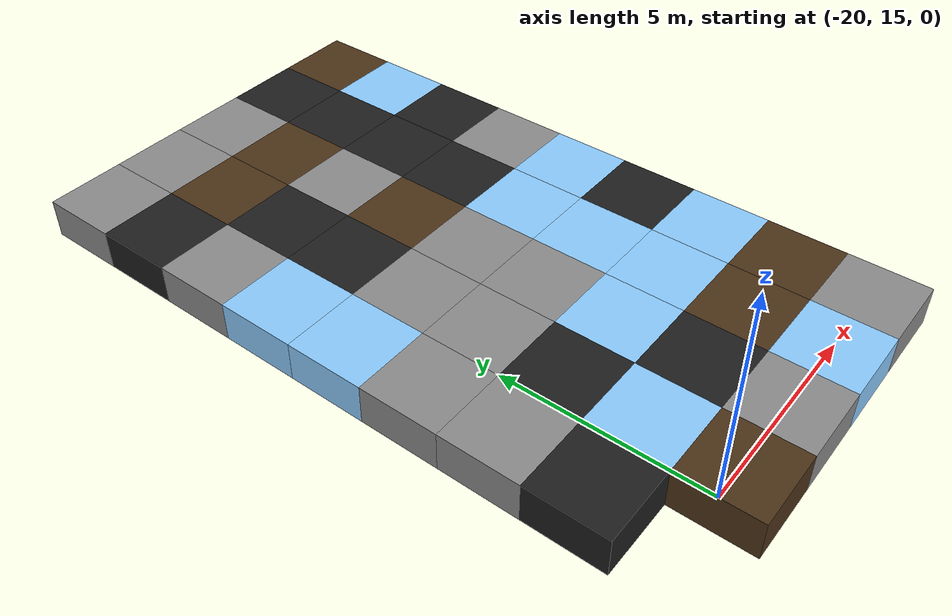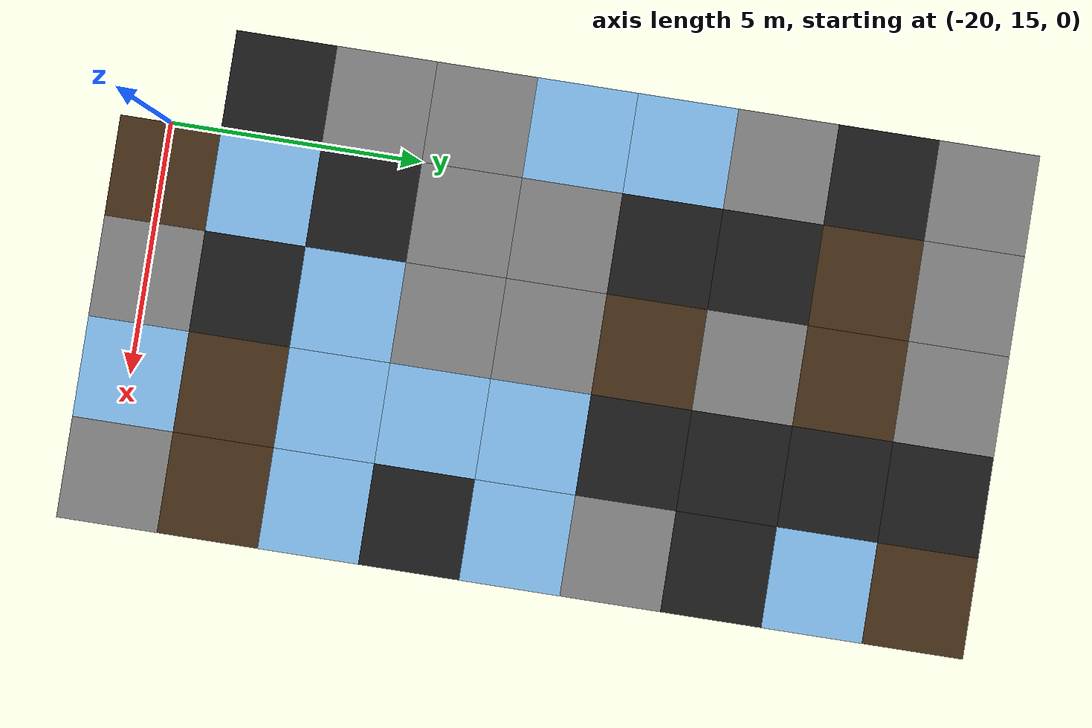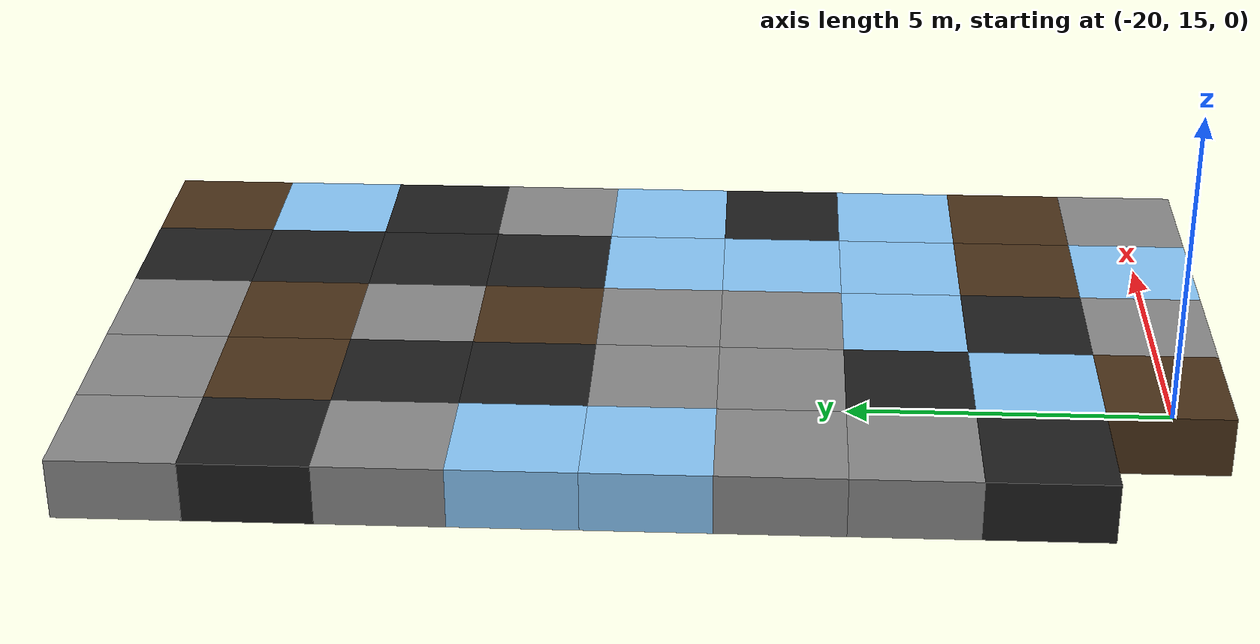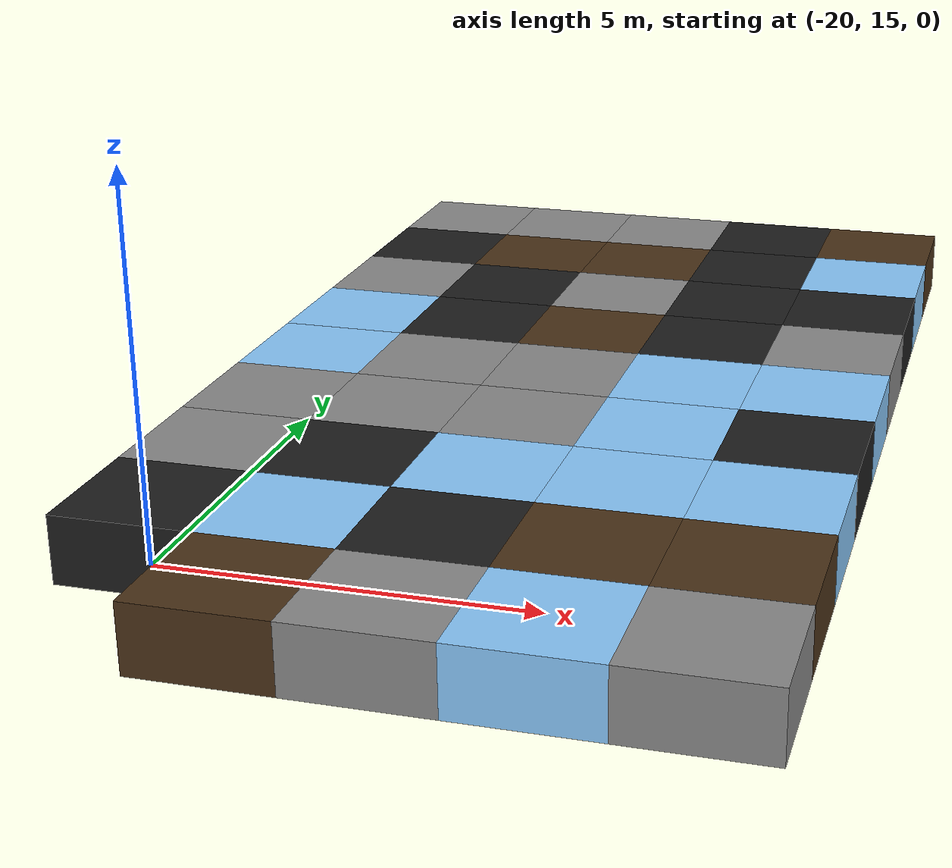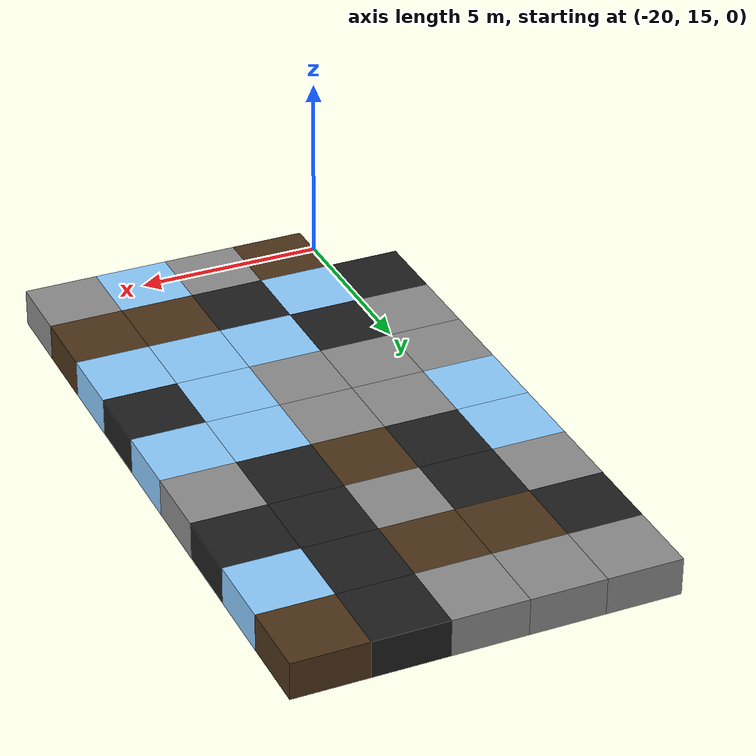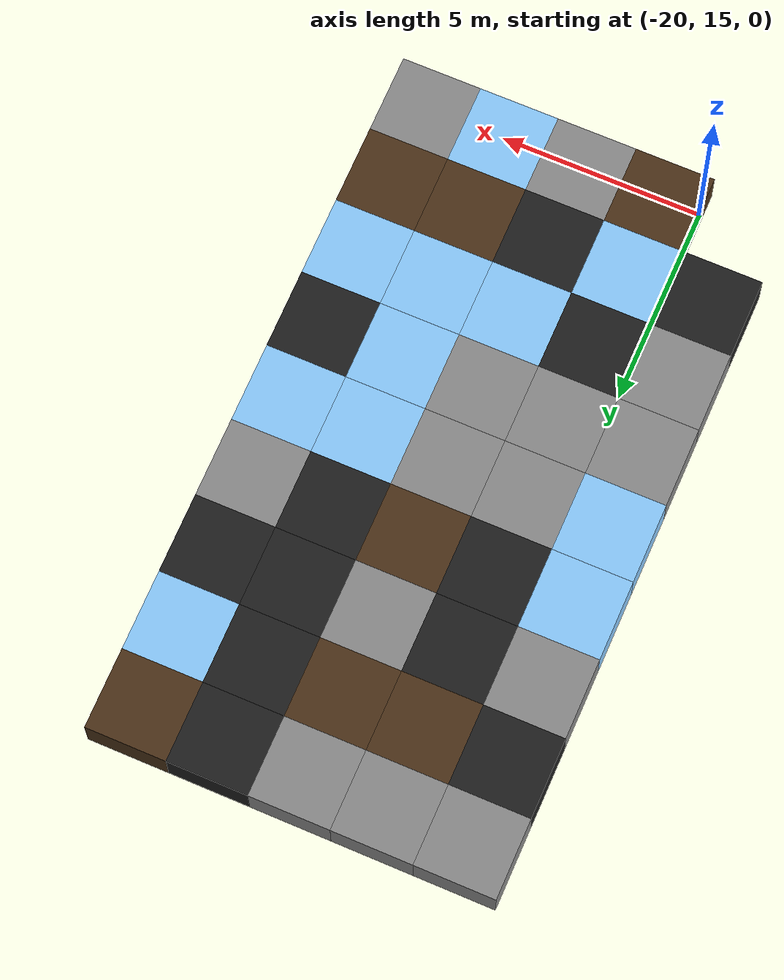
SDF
<sdf version="1.5">
 <world name="squares_example">
  <model name="tile_6_23">
   <static>true</static>
   <pose>-19.000 15.000 -0.500 0 0 0</pose>
   <link name="link">
    <collision name="col">
     <geometry><box><size>2.0 2.0 1.0</size></box></geometry>
     <surface>
      <friction>
       <ode><mu>0.6</mu><mu2>0.4</mu2><fdir1>1 0 0</fdir1><slip1>0.08</slip1><slip2>0.08</slip2></ode>
       <torsional>
        <coefficient>0.03</coefficient>
        <use_patch_radius>false</use_patch_radius>
        <surface_radius>0.12</surface_radius>
        <ode><slip>0.0</slip></ode>
       </torsional>
      </friction>
      <bounce><restitution_coefficient>0.0</restitution_coefficient><threshold>0.1</threshold></bounce>
      <contact>
       <ode><kp>1000000.0</kp><kd>10000.0</kd><max_vel>0.01</max_vel><min_depth>0.0</min_depth></ode>
      </contact>
     </surface>
    </collision>
    <visual name="visual">
     <geometry><box><size>2.0 2.0 1.0</size></box></geometry>
     <material>
      <diffuse>0.30 0.20 0.10 1</diffuse>
      <ambient>0 0 0 0</ambient>
      <specular>0 0 0 1</specular>
      <emissive>0 0 0 1</emissive>
     </material>
    </visual>
   </link>
  </model>
  <model name="tile_7_23">
   <static>true</static>
   <pose>-17.000 15.000 -0.500 0 0 0</pose>
   <link name="link">
    <collision name="col">
     <geometry><box><size>2.0 2.0 1.0</size></box></geometry>
     <surface>
      <friction>
       <ode><mu>0.8</mu><mu2>0.3</mu2><fdir1>1 0 0</fdir1><slip1>0.0</slip1><slip2>0.0</slip2></ode>
       <torsional>
        <coefficient>0.03</coefficient>
        <use_patch_radius>false</use_patch_radius>
        <surface_radius>0.12</surface_radius>
        <ode><slip>0.0</slip></ode>
       </torsional>
      </friction>
      <bounce><restitution_coefficient>0.0</restitution_coefficient><threshold>0.1</threshold></bounce>
      <contact>
       <ode><kp>10000000000.0</kp><kd>10000000.0</kd><max_vel>0.01</max_vel><min_depth>0.0</min_depth></ode>
      </contact>
     </surface>
    </collision>
    <visual name="visual">
     <geometry><box><size>2.0 2.0 1.0</size></box></geometry>
     <material>
      <diffuse>0.55 0.55 0.55 1</diffuse>
      <ambient>0 0 0 0</ambient>
      <specular>0 0 0 1</specular>
      <emissive>0 0 0 1</emissive>
     </material>
    </visual>
   </link>
  </model>
  <model name="tile_8_23">
   <static>true</static>
   <pose>-15.000 15.000 -0.500 0 0 0</pose>
   <link name="link">
    <collision name="col">
     <geometry><box><size>2.0 2.0 1.0</size></box></geometry>
     <surface>
      <friction>
       <ode><mu>0.03</mu><mu2>0.02</mu2><fdir1>1 0 0</fdir1><slip1>0.03</slip1><slip2>0.03</slip2></ode>
       <torsional>
        <coefficient>0.005</coefficient>
        <use_patch_radius>false</use_patch_radius>
        <surface_radius>0.12</surface_radius>
        <ode><slip>0.01</slip></ode>
       </torsional>
      </friction>
      <bounce><restitution_coefficient>0.0</restitution_coefficient><threshold>0.1</threshold></bounce>
      <contact>
       <ode><kp>10000000.0</kp><kd>1000.0</kd><max_vel>0.01</max_vel><min_depth>0.0</min_depth></ode>
      </contact>
     </surface>
    </collision>
    <visual name="visual">
     <geometry><box><size>2.0 2.0 1.0</size></box></geometry>
     <material>
      <diffuse>0.55 0.80 1.00 1</diffuse>
      <ambient>0 0 0 0</ambient>
      <specular>0 0 0 1</specular>
      <emissive>0 0 0 1</emissive>
     </material>
    </visual>
   </link>
  </model>
  <model name="tile_9_23">
   <static>true</static>
   <pose>-13.000 15.000 -0.500 0 0 0</pose>
   <link name="link">
    <collision name="col">
     <geometry><box><size>2.0 2.0 1.0</size></box></geometry>
     <surface>
      <friction>
       <ode><mu>0.8</mu><mu2>0.3</mu2><fdir1>1 0 0</fdir1><slip1>0.0</slip1><slip2>0.0</slip2></ode>
       <torsional>
        <coefficient>0.03</coefficient>
        <use_patch_radius>false</use_patch_radius>
        <surface_radius>0.12</surface_radius>
        <ode><slip>0.0</slip></ode>
       </torsional>
      </friction>
      <bounce><restitution_coefficient>0.0</restitution_coefficient><threshold>0.1</threshold></bounce>
      <contact>
       <ode><kp>10000000000.0</kp><kd>10000000.0</kd><max_vel>0.01</max_vel><min_depth>0.0</min_depth></ode>
      </contact>
     </surface>
    </collision>
    <visual name="visual">
     <geometry><box><size>2.0 2.0 1.0</size></box></geometry>
     <material>
      <diffuse>0.55 0.55 0.55 1</diffuse>
      <ambient>0 0 0 0</ambient>
      <specular>0 0 0 1</specular>
      <emissive>0 0 0 1</emissive>
     </material>
    </visual>
   </link>
  </model>
  <model name="tile_5_24">
   <static>true</static>
   <pose>-21.000 17.000 -0.500 0 0 0</pose>
   <link name="link">
    <collision name="col">
     <geometry><box><size>2.0 2.0 1.0</size></box></geometry>
     <surface>
      <friction>
       <ode><mu>0.4</mu><mu2>0.15</mu2><fdir1>1 0 0</fdir1><slip1>0.0</slip1><slip2>0.0</slip2></ode>
       <torsional>
        <coefficient>0.03</coefficient>
        <use_patch_radius>false</use_patch_radius>
        <surface_radius>0.12</surface_radius>
        <ode><slip>0.0</slip></ode>
       </torsional>
      </friction>
      <bounce><restitution_coefficient>0.0</restitution_coefficient><threshold>0.1</threshold></bounce>
      <contact>
       <ode><kp>1000000000.0</kp><kd>1000000.0</kd><max_vel>0.01</max_vel><min_depth>0.0</min_depth></ode>
      </contact>
     </surface>
    </collision>
    <visual name="visual">
     <geometry><box><size>2.0 2.0 1.0</size></box></geometry>
     <material>
      <diffuse>0.12 0.12 0.12 1</diffuse>
      <ambient>0 0 0 0</ambient>
      <specular>0 0 0 1</specular>
      <emissive>0 0 0 1</emissive>
     </material>
    </visual>
   </link>
  </model>
  <model name="tile_6_24">
   <static>true</static>
   <pose>-19.000 17.000 -0.500 0 0 0</pose>
   <link name="link">
    <collision name="col">
     <geometry><box><size>2.0 2.0 1.0</size></box></geometry>
     <surface>
      <friction>
       <ode><mu>0.03</mu><mu2>0.02</mu2><fdir1>1 0 0</fdir1><slip1>0.03</slip1><slip2>0.03</slip2></ode>
       <torsional>
        <coefficient>0.005</coefficient>
        <use_patch_radius>false</use_patch_radius>
        <surface_radius>0.12</surface_radius>
        <ode><slip>0.01</slip></ode>
       </torsional>
      </friction>
      <bounce><restitution_coefficient>0.0</restitution_coefficient><threshold>0.1</threshold></bounce>
      <contact>
       <ode><kp>10000000.0</kp><kd>1000.0</kd><max_vel>0.01</max_vel><min_depth>0.0</min_depth></ode>
      </contact>
     </surface>
    </collision>
    <visual name="visual">
     <geometry><box><size>2.0 2.0 1.0</size></box></geometry>
     <material>
      <diffuse>0.55 0.80 1.00 1</diffuse>
      <ambient>0 0 0 0</ambient>
      <specular>0 0 0 1</specular>
      <emissive>0 0 0 1</emissive>
     </material>
    </visual>
   </link>
  </model>
  <model name="tile_7_24">
   <static>true</static>
   <pose>-17.000 17.000 -0.500 0 0 0</pose>
   <link name="link">
    <collision name="col">
     <geometry><box><size>2.0 2.0 1.0</size></box></geometry>
     <surface>
      <friction>
       <ode><mu>0.4</mu><mu2>0.15</mu2><fdir1>1 0 0</fdir1><slip1>0.0</slip1><slip2>0.0</slip2></ode>
       <torsional>
        <coefficient>0.03</coefficient>
        <use_patch_radius>false</use_patch_radius>
        <surface_radius>0.12</surface_radius>
        <ode><slip>0.0</slip></ode>
       </torsional>
      </friction>
      <bounce><restitution_coefficient>0.0</restitution_coefficient><threshold>0.1</threshold></bounce>
      <contact>
       <ode><kp>1000000000.0</kp><kd>1000000.0</kd><max_vel>0.01</max_vel><min_depth>0.0</min_depth></ode>
      </contact>
     </surface>
    </collision>
    <visual name="visual">
     <geometry><box><size>2.0 2.0 1.0</size></box></geometry>
     <material>
      <diffuse>0.12 0.12 0.12 1</diffuse>
      <ambient>0 0 0 0</ambient>
      <specular>0 0 0 1</specular>
      <emissive>0 0 0 1</emissive>
     </material>
    </visual>
   </link>
  </model>
  <model name="tile_8_24">
   <static>true</static>
   <pose>-15.000 17.000 -0.500 0 0 0</pose>
   <link name="link">
    <collision name="col">
     <geometry><box><size>2.0 2.0 1.0</size></box></geometry>
     <surface>
      <friction>
       <ode><mu>0.6</mu><mu2>0.4</mu2><fdir1>1 0 0</fdir1><slip1>0.08</slip1><slip2>0.08</slip2></ode>
       <torsional>
        <coefficient>0.03</coefficient>
        <use_patch_radius>false</use_patch_radius>
        <surface_radius>0.12</surface_radius>
        <ode><slip>0.0</slip></ode>
       </torsional>
      </friction>
      <bounce><restitution_coefficient>0.0</restitution_coefficient><threshold>0.1</threshold></bounce>
      <contact>
       <ode><kp>1000000.0</kp><kd>10000.0</kd><max_vel>0.01</max_vel><min_depth>0.0</min_depth></ode>
      </contact>
     </surface>
    </collision>
    <visual name="visual">
     <geometry><box><size>2.0 2.0 1.0</size></box></geometry>
     <material>
      <diffuse>0.30 0.20 0.10 1</diffuse>
      <ambient>0 0 0 0</ambient>
      <specular>0 0 0 1</specular>
      <emissive>0 0 0 1</emissive>
     </material>
    </visual>
   </link>
  </model>
  <model name="tile_9_24">
   <static>true</static>
   <pose>-13.000 17.000 -0.500 0 0 0</pose>
   <link name="link">
    <collision name="col">
     <geometry><box><size>2.0 2.0 1.0</size></box></geometry>
     <surface>
      <friction>
       <ode><mu>0.6</mu><mu2>0.4</mu2><fdir1>1 0 0</fdir1><slip1>0.08</slip1><slip2>0.08</slip2></ode>
       <torsional>
        <coefficient>0.03</coefficient>
        <use_patch_radius>false</use_patch_radius>
        <surface_radius>0.12</surface_radius>
        <ode><slip>0.0</slip></ode>
       </torsional>
      </friction>
      <bounce><restitution_coefficient>0.0</restitution_coefficient><threshold>0.1</threshold></bounce>
      <contact>
       <ode><kp>1000000.0</kp><kd>10000.0</kd><max_vel>0.01</max_vel><min_depth>0.0</min_depth></ode>
      </contact>
     </surface>
    </collision>
    <visual name="visual">
     <geometry><box><size>2.0 2.0 1.0</size></box></geometry>
     <material>
      <diffuse>0.30 0.20 0.10 1</diffuse>
      <ambient>0 0 0 0</ambient>
      <specular>0 0 0 1</specular>
      <emissive>0 0 0 1</emissive>
     </material>
    </visual>
   </link>
  </model>
  <model name="tile_5_25">
   <static>true</static>
   <pose>-21.000 19.000 -0.500 0 0 0</pose>
   <link name="link">
    <collision name="col">
     <geometry><box><size>2.0 2.0 1.0</size></box></geometry>
     <surface>
      <friction>
       <ode><mu>0.8</mu><mu2>0.3</mu2><fdir1>1 0 0</fdir1><slip1>0.0</slip1><slip2>0.0</slip2></ode>
       <torsional>
        <coefficient>0.03</coefficient>
        <use_patch_radius>false</use_patch_radius>
        <surface_radius>0.12</surface_radius>
        <ode><slip>0.0</slip></ode>
       </torsional>
      </friction>
      <bounce><restitution_coefficient>0.0</restitution_coefficient><threshold>0.1</threshold></bounce>
      <contact>
       <ode><kp>10000000000.0</kp><kd>10000000.0</kd><max_vel>0.01</max_vel><min_depth>0.0</min_depth></ode>
      </contact>
     </surface>
    </collision>
    <visual name="visual">
     <geometry><box><size>2.0 2.0 1.0</size></box></geometry>
     <material>
      <diffuse>0.55 0.55 0.55 1</diffuse>
      <ambient>0 0 0 0</ambient>
      <specular>0 0 0 1</specular>
      <emissive>0 0 0 1</emissive>
     </material>
    </visual>
   </link>
  </model>
  <model name="tile_6_25">
   <static>true</static>
   <pose>-19.000 19.000 -0.500 0 0 0</pose>
   <link name="link">
    <collision name="col">
     <geometry><box><size>2.0 2.0 1.0</size></box></geometry>
     <surface>
      <friction>
       <ode><mu>0.4</mu><mu2>0.15</mu2><fdir1>1 0 0</fdir1><slip1>0.0</slip1><slip2>0.0</slip2></ode>
       <torsional>
        <coefficient>0.03</coefficient>
        <use_patch_radius>false</use_patch_radius>
        <surface_radius>0.12</surface_radius>
        <ode><slip>0.0</slip></ode>
       </torsional>
      </friction>
      <bounce><restitution_coefficient>0.0</restitution_coefficient><threshold>0.1</threshold></bounce>
      <contact>
       <ode><kp>1000000000.0</kp><kd>1000000.0</kd><max_vel>0.01</max_vel><min_depth>0.0</min_depth></ode>
      </contact>
     </surface>
    </collision>
    <visual name="visual">
     <geometry><box><size>2.0 2.0 1.0</size></box></geometry>
     <material>
      <diffuse>0.12 0.12 0.12 1</diffuse>
      <ambient>0 0 0 0</ambient>
      <specular>0 0 0 1</specular>
      <emissive>0 0 0 1</emissive>
     </material>
    </visual>
   </link>
  </model>
  <model name="tile_7_25">
   <static>true</static>
   <pose>-17.000 19.000 -0.500 0 0 0</pose>
   <link name="link">
    <collision name="col">
     <geometry><box><size>2.0 2.0 1.0</size></box></geometry>
     <surface>
      <friction>
       <ode><mu>0.03</mu><mu2>0.02</mu2><fdir1>1 0 0</fdir1><slip1>0.03</slip1><slip2>0.03</slip2></ode>
       <torsional>
        <coefficient>0.005</coefficient>
        <use_patch_radius>false</use_patch_radius>
        <surface_radius>0.12</surface_radius>
        <ode><slip>0.01</slip></ode>
       </torsional>
      </friction>
      <bounce><restitution_coefficient>0.0</restitution_coefficient><threshold>0.1</threshold></bounce>
      <contact>
       <ode><kp>10000000.0</kp><kd>1000.0</kd><max_vel>0.01</max_vel><min_depth>0.0</min_depth></ode>
      </contact>
     </surface>
    </collision>
    <visual name="visual">
     <geometry><box><size>2.0 2.0 1.0</size></box></geometry>
     <material>
      <diffuse>0.55 0.80 1.00 1</diffuse>
      <ambient>0 0 0 0</ambient>
      <specular>0 0 0 1</specular>
      <emissive>0 0 0 1</emissive>
     </material>
    </visual>
   </link>
  </model>
  <model name="tile_8_25">
   <static>true</static>
   <pose>-15.000 19.000 -0.500 0 0 0</pose>
   <link name="link">
    <collision name="col">
     <geometry><box><size>2.0 2.0 1.0</size></box></geometry>
     <surface>
      <friction>
       <ode><mu>0.03</mu><mu2>0.02</mu2><fdir1>1 0 0</fdir1><slip1>0.03</slip1><slip2>0.03</slip2></ode>
       <torsional>
        <coefficient>0.005</coefficient>
        <use_patch_radius>false</use_patch_radius>
        <surface_radius>0.12</surface_radius>
        <ode><slip>0.01</slip></ode>
       </torsional>
      </friction>
      <bounce><restitution_coefficient>0.0</restitution_coefficient><threshold>0.1</threshold></bounce>
      <contact>
       <ode><kp>10000000.0</kp><kd>1000.0</kd><max_vel>0.01</max_vel><min_depth>0.0</min_depth></ode>
      </contact>
     </surface>
    </collision>
    <visual name="visual">
     <geometry><box><size>2.0 2.0 1.0</size></box></geometry>
     <material>
      <diffuse>0.55 0.80 1.00 1</diffuse>
      <ambient>0 0 0 0</ambient>
      <specular>0 0 0 1</specular>
      <emissive>0 0 0 1</emissive>
     </material>
    </visual>
   </link>
  </model>
  <model name="tile_9_25">
   <static>true</static>
   <pose>-13.000 19.000 -0.500 0 0 0</pose>
   <link name="link">
    <collision name="col">
     <geometry><box><size>2.0 2.0 1.0</size></box></geometry>
     <surface>
      <friction>
       <ode><mu>0.03</mu><mu2>0.02</mu2><fdir1>1 0 0</fdir1><slip1>0.03</slip1><slip2>0.03</slip2></ode>
       <torsional>
        <coefficient>0.005</coefficient>
        <use_patch_radius>false</use_patch_radius>
        <surface_radius>0.12</surface_radius>
        <ode><slip>0.01</slip></ode>
       </torsional>
      </friction>
      <bounce><restitution_coefficient>0.0</restitution_coefficient><threshold>0.1</threshold></bounce>
      <contact>
       <ode><kp>10000000.0</kp><kd>1000.0</kd><max_vel>0.01</max_vel><min_depth>0.0</min_depth></ode>
      </contact>
     </surface>
    </collision>
    <visual name="visual">
     <geometry><box><size>2.0 2.0 1.0</size></box></geometry>
     <material>
      <diffuse>0.55 0.80 1.00 1</diffuse>
      <ambient>0 0 0 0</ambient>
      <specular>0 0 0 1</specular>
      <emissive>0 0 0 1</emissive>
     </material>
    </visual>
   </link>
  </model>
  <model name="tile_5_26">
   <static>true</static>
   <pose>-21.000 21.000 -0.500 0 0 0</pose>
   <link name="link">
    <collision name="col">
     <geometry><box><size>2.0 2.0 1.0</size></box></geometry>
     <surface>
      <friction>
       <ode><mu>0.8</mu><mu2>0.3</mu2><fdir1>1 0 0</fdir1><slip1>0.0</slip1><slip2>0.0</slip2></ode>
       <torsional>
        <coefficient>0.03</coefficient>
        <use_patch_radius>false</use_patch_radius>
        <surface_radius>0.12</surface_radius>
        <ode><slip>0.0</slip></ode>
       </torsional>
      </friction>
      <bounce><restitution_coefficient>0.0</restitution_coefficient><threshold>0.1</threshold></bounce>
      <contact>
       <ode><kp>10000000000.0</kp><kd>10000000.0</kd><max_vel>0.01</max_vel><min_depth>0.0</min_depth></ode>
      </contact>
     </surface>
    </collision>
    <visual name="visual">
     <geometry><box><size>2.0 2.0 1.0</size></box></geometry>
     <material>
      <diffuse>0.55 0.55 0.55 1</diffuse>
      <ambient>0 0 0 0</ambient>
      <specular>0 0 0 1</specular>
      <emissive>0 0 0 1</emissive>
     </material>
    </visual>
   </link>
  </model>
  <model name="tile_6_26">
   <static>true</static>
   <pose>-19.000 21.000 -0.500 0 0 0</pose>
   <link name="link">
    <collision name="col">
     <geometry><box><size>2.0 2.0 1.0</size></box></geometry>
     <surface>
      <friction>
       <ode><mu>0.8</mu><mu2>0.3</mu2><fdir1>1 0 0</fdir1><slip1>0.0</slip1><slip2>0.0</slip2></ode>
       <torsional>
        <coefficient>0.03</coefficient>
        <use_patch_radius>false</use_patch_radius>
        <surface_radius>0.12</surface_radius>
        <ode><slip>0.0</slip></ode>
       </torsional>
      </friction>
      <bounce><restitution_coefficient>0.0</restitution_coefficient><threshold>0.1</threshold></bounce>
      <contact>
       <ode><kp>10000000000.0</kp><kd>10000000.0</kd><max_vel>0.01</max_vel><min_depth>0.0</min_depth></ode>
      </contact>
     </surface>
    </collision>
    <visual name="visual">
     <geometry><box><size>2.0 2.0 1.0</size></box></geometry>
     <material>
      <diffuse>0.55 0.55 0.55 1</diffuse>
      <ambient>0 0 0 0</ambient>
      <specular>0 0 0 1</specular>
      <emissive>0 0 0 1</emissive>
     </material>
    </visual>
   </link>
  </model>
  <model name="tile_7_26">
   <static>true</static>
   <pose>-17.000 21.000 -0.500 0 0 0</pose>
   <link name="link">
    <collision name="col">
     <geometry><box><size>2.0 2.0 1.0</size></box></geometry>
     <surface>
      <friction>
       <ode><mu>0.8</mu><mu2>0.3</mu2><fdir1>1 0 0</fdir1><slip1>0.0</slip1><slip2>0.0</slip2></ode>
       <torsional>
        <coefficient>0.03</coefficient>
        <use_patch_radius>false</use_patch_radius>
        <surface_radius>0.12</surface_radius>
        <ode><slip>0.0</slip></ode>
       </torsional>
      </friction>
      <bounce><restitution_coefficient>0.0</restitution_coefficient><threshold>0.1</threshold></bounce>
      <contact>
       <ode><kp>10000000000.0</kp><kd>10000000.0</kd><max_vel>0.01</max_vel><min_depth>0.0</min_depth></ode>
      </contact>
     </surface>
    </collision>
    <visual name="visual">
     <geometry><box><size>2.0 2.0 1.0</size></box></geometry>
     <material>
      <diffuse>0.55 0.55 0.55 1</diffuse>
      <ambient>0 0 0 0</ambient>
      <specular>0 0 0 1</specular>
      <emissive>0 0 0 1</emissive>
     </material>
    </visual>
   </link>
  </model>
  <model name="tile_8_26">
   <static>true</static>
   <pose>-15.000 21.000 -0.500 0 0 0</pose>
   <link name="link">
    <collision name="col">
     <geometry><box><size>2.0 2.0 1.0</size></box></geometry>
     <surface>
      <friction>
       <ode><mu>0.03</mu><mu2>0.02</mu2><fdir1>1 0 0</fdir1><slip1>0.03</slip1><slip2>0.03</slip2></ode>
       <torsional>
        <coefficient>0.005</coefficient>
        <use_patch_radius>false</use_patch_radius>
        <surface_radius>0.12</surface_radius>
        <ode><slip>0.01</slip></ode>
       </torsional>
      </friction>
      <bounce><restitution_coefficient>0.0</restitution_coefficient><threshold>0.1</threshold></bounce>
      <contact>
       <ode><kp>10000000.0</kp><kd>1000.0</kd><max_vel>0.01</max_vel><min_depth>0.0</min_depth></ode>
      </contact>
     </surface>
    </collision>
    <visual name="visual">
     <geometry><box><size>2.0 2.0 1.0</size></box></geometry>
     <material>
      <diffuse>0.55 0.80 1.00 1</diffuse>
      <ambient>0 0 0 0</ambient>
      <specular>0 0 0 1</specular>
      <emissive>0 0 0 1</emissive>
     </material>
    </visual>
   </link>
  </model>
  <model name="tile_9_26">
   <static>true</static>
   <pose>-13.000 21.000 -0.500 0 0 0</pose>
   <link name="link">
    <collision name="col">
     <geometry><box><size>2.0 2.0 1.0</size></box></geometry>
     <surface>
      <friction>
       <ode><mu>0.4</mu><mu2>0.15</mu2><fdir1>1 0 0</fdir1><slip1>0.0</slip1><slip2>0.0</slip2></ode>
       <torsional>
        <coefficient>0.03</coefficient>
        <use_patch_radius>false</use_patch_radius>
        <surface_radius>0.12</surface_radius>
        <ode><slip>0.0</slip></ode>
       </torsional>
      </friction>
      <bounce><restitution_coefficient>0.0</restitution_coefficient><threshold>0.1</threshold></bounce>
      <contact>
       <ode><kp>1000000000.0</kp><kd>1000000.0</kd><max_vel>0.01</max_vel><min_depth>0.0</min_depth></ode>
      </contact>
     </surface>
    </collision>
    <visual name="visual">
     <geometry><box><size>2.0 2.0 1.0</size></box></geometry>
     <material>
      <diffuse>0.12 0.12 0.12 1</diffuse>
      <ambient>0 0 0 0</ambient>
      <specular>0 0 0 1</specular>
      <emissive>0 0 0 1</emissive>
     </material>
    </visual>
   </link>
  </model>
  <model name="tile_5_27">
   <static>true</static>
   <pose>-21.000 23.000 -0.500 0 0 0</pose>
   <link name="link">
    <collision name="col">
     <geometry><box><size>2.0 2.0 1.0</size></box></geometry>
     <surface>
      <friction>
       <ode><mu>0.03</mu><mu2>0.02</mu2><fdir1>1 0 0</fdir1><slip1>0.03</slip1><slip2>0.03</slip2></ode>
       <torsional>
        <coefficient>0.005</coefficient>
        <use_patch_radius>false</use_patch_radius>
        <surface_radius>0.12</surface_radius>
        <ode><slip>0.01</slip></ode>
       </torsional>
      </friction>
      <bounce><restitution_coefficient>0.0</restitution_coefficient><threshold>0.1</threshold></bounce>
      <contact>
       <ode><kp>10000000.0</kp><kd>1000.0</kd><max_vel>0.01</max_vel><min_depth>0.0</min_depth></ode>
      </contact>
     </surface>
    </collision>
    <visual name="visual">
     <geometry><box><size>2.0 2.0 1.0</size></box></geometry>
     <material>
      <diffuse>0.55 0.80 1.00 1</diffuse>
      <ambient>0 0 0 0</ambient>
      <specular>0 0 0 1</specular>
      <emissive>0 0 0 1</emissive>
     </material>
    </visual>
   </link>
  </model>
  <model name="tile_6_27">
   <static>true</static>
   <pose>-19.000 23.000 -0.500 0 0 0</pose>
   <link name="link">
    <collision name="col">
     <geometry><box><size>2.0 2.0 1.0</size></box></geometry>
     <surface>
      <friction>
       <ode><mu>0.8</mu><mu2>0.3</mu2><fdir1>1 0 0</fdir1><slip1>0.0</slip1><slip2>0.0</slip2></ode>
       <torsional>
        <coefficient>0.03</coefficient>
        <use_patch_radius>false</use_patch_radius>
        <surface_radius>0.12</surface_radius>
        <ode><slip>0.0</slip></ode>
       </torsional>
      </friction>
      <bounce><restitution_coefficient>0.0</restitution_coefficient><threshold>0.1</threshold></bounce>
      <contact>
       <ode><kp>10000000000.0</kp><kd>10000000.0</kd><max_vel>0.01</max_vel><min_depth>0.0</min_depth></ode>
      </contact>
     </surface>
    </collision>
    <visual name="visual">
     <geometry><box><size>2.0 2.0 1.0</size></box></geometry>
     <material>
      <diffuse>0.55 0.55 0.55 1</diffuse>
      <ambient>0 0 0 0</ambient>
      <specular>0 0 0 1</specular>
      <emissive>0 0 0 1</emissive>
     </material>
    </visual>
   </link>
  </model>
  <model name="tile_7_27">
   <static>true</static>
   <pose>-17.000 23.000 -0.500 0 0 0</pose>
   <link name="link">
    <collision name="col">
     <geometry><box><size>2.0 2.0 1.0</size></box></geometry>
     <surface>
      <friction>
       <ode><mu>0.8</mu><mu2>0.3</mu2><fdir1>1 0 0</fdir1><slip1>0.0</slip1><slip2>0.0</slip2></ode>
       <torsional>
        <coefficient>0.03</coefficient>
        <use_patch_radius>false</use_patch_radius>
        <surface_radius>0.12</surface_radius>
        <ode><slip>0.0</slip></ode>
       </torsional>
      </friction>
      <bounce><restitution_coefficient>0.0</restitution_coefficient><threshold>0.1</threshold></bounce>
      <contact>
       <ode><kp>10000000000.0</kp><kd>10000000.0</kd><max_vel>0.01</max_vel><min_depth>0.0</min_depth></ode>
      </contact>
     </surface>
    </collision>
    <visual name="visual">
     <geometry><box><size>2.0 2.0 1.0</size></box></geometry>
     <material>
      <diffuse>0.55 0.55 0.55 1</diffuse>
      <ambient>0 0 0 0</ambient>
      <specular>0 0 0 1</specular>
      <emissive>0 0 0 1</emissive>
     </material>
    </visual>
   </link>
  </model>
  <model name="tile_8_27">
   <static>true</static>
   <pose>-15.000 23.000 -0.500 0 0 0</pose>
   <link name="link">
    <collision name="col">
     <geometry><box><size>2.0 2.0 1.0</size></box></geometry>
     <surface>
      <friction>
       <ode><mu>0.03</mu><mu2>0.02</mu2><fdir1>1 0 0</fdir1><slip1>0.03</slip1><slip2>0.03</slip2></ode>
       <torsional>
        <coefficient>0.005</coefficient>
        <use_patch_radius>false</use_patch_radius>
        <surface_radius>0.12</surface_radius>
        <ode><slip>0.01</slip></ode>
       </torsional>
      </friction>
      <bounce><restitution_coefficient>0.0</restitution_coefficient><threshold>0.1</threshold></bounce>
      <contact>
       <ode><kp>10000000.0</kp><kd>1000.0</kd><max_vel>0.01</max_vel><min_depth>0.0</min_depth></ode>
      </contact>
     </surface>
    </collision>
    <visual name="visual">
     <geometry><box><size>2.0 2.0 1.0</size></box></geometry>
     <material>
      <diffuse>0.55 0.80 1.00 1</diffuse>
      <ambient>0 0 0 0</ambient>
      <specular>0 0 0 1</specular>
      <emissive>0 0 0 1</emissive>
     </material>
    </visual>
   </link>
  </model>
  <model name="tile_9_27">
   <static>true</static>
   <pose>-13.000 23.000 -0.500 0 0 0</pose>
   <link name="link">
    <collision name="col">
     <geometry><box><size>2.0 2.0 1.0</size></box></geometry>
     <surface>
      <friction>
       <ode><mu>0.03</mu><mu2>0.02</mu2><fdir1>1 0 0</fdir1><slip1>0.03</slip1><slip2>0.03</slip2></ode>
       <torsional>
        <coefficient>0.005</coefficient>
        <use_patch_radius>false</use_patch_radius>
        <surface_radius>0.12</surface_radius>
        <ode><slip>0.01</slip></ode>
       </torsional>
      </friction>
      <bounce><restitution_coefficient>0.0</restitution_coefficient><threshold>0.1</threshold></bounce>
      <contact>
       <ode><kp>10000000.0</kp><kd>1000.0</kd><max_vel>0.01</max_vel><min_depth>0.0</min_depth></ode>
      </contact>
     </surface>
    </collision>
    <visual name="visual">
     <geometry><box><size>2.0 2.0 1.0</size></box></geometry>
     <material>
      <diffuse>0.55 0.80 1.00 1</diffuse>
      <ambient>0 0 0 0</ambient>
      <specular>0 0 0 1</specular>
      <emissive>0 0 0 1</emissive>
     </material>
    </visual>
   </link>
  </model>
  <model name="tile_5_28">
   <static>true</static>
   <pose>-21.000 25.000 -0.500 0 0 0</pose>
   <link name="link">
    <collision name="col">
     <geometry><box><size>2.0 2.0 1.0</size></box></geometry>
     <surface>
      <friction>
       <ode><mu>0.03</mu><mu2>0.02</mu2><fdir1>1 0 0</fdir1><slip1>0.03</slip1><slip2>0.03</slip2></ode>
       <torsional>
        <coefficient>0.005</coefficient>
        <use_patch_radius>false</use_patch_radius>
        <surface_radius>0.12</surface_radius>
        <ode><slip>0.01</slip></ode>
       </torsional>
      </friction>
      <bounce><restitution_coefficient>0.0</restitution_coefficient><threshold>0.1</threshold></bounce>
      <contact>
       <ode><kp>10000000.0</kp><kd>1000.0</kd><max_vel>0.01</max_vel><min_depth>0.0</min_depth></ode>
      </contact>
     </surface>
    </collision>
    <visual name="visual">
     <geometry><box><size>2.0 2.0 1.0</size></box></geometry>
     <material>
      <diffuse>0.55 0.80 1.00 1</diffuse>
      <ambient>0 0 0 0</ambient>
      <specular>0 0 0 1</specular>
      <emissive>0 0 0 1</emissive>
     </material>
    </visual>
   </link>
  </model>
  <model name="tile_6_28">
   <static>true</static>
   <pose>-19.000 25.000 -0.500 0 0 0</pose>
   <link name="link">
    <collision name="col">
     <geometry><box><size>2.0 2.0 1.0</size></box></geometry>
     <surface>
      <friction>
       <ode><mu>0.4</mu><mu2>0.15</mu2><fdir1>1 0 0</fdir1><slip1>0.0</slip1><slip2>0.0</slip2></ode>
       <torsional>
        <coefficient>0.03</coefficient>
        <use_patch_radius>false</use_patch_radius>
        <surface_radius>0.12</surface_radius>
        <ode><slip>0.0</slip></ode>
       </torsional>
      </friction>
      <bounce><restitution_coefficient>0.0</restitution_coefficient><threshold>0.1</threshold></bounce>
      <contact>
       <ode><kp>1000000000.0</kp><kd>1000000.0</kd><max_vel>0.01</max_vel><min_depth>0.0</min_depth></ode>
      </contact>
     </surface>
    </collision>
    <visual name="visual">
     <geometry><box><size>2.0 2.0 1.0</size></box></geometry>
     <material>
      <diffuse>0.12 0.12 0.12 1</diffuse>
      <ambient>0 0 0 0</ambient>
      <specular>0 0 0 1</specular>
      <emissive>0 0 0 1</emissive>
     </material>
    </visual>
   </link>
  </model>
  <model name="tile_7_28">
   <static>true</static>
   <pose>-17.000 25.000 -0.500 0 0 0</pose>
   <link name="link">
    <collision name="col">
     <geometry><box><size>2.0 2.0 1.0</size></box></geometry>
     <surface>
      <friction>
       <ode><mu>0.6</mu><mu2>0.4</mu2><fdir1>1 0 0</fdir1><slip1>0.08</slip1><slip2>0.08</slip2></ode>
       <torsional>
        <coefficient>0.03</coefficient>
        <use_patch_radius>false</use_patch_radius>
        <surface_radius>0.12</surface_radius>
        <ode><slip>0.0</slip></ode>
       </torsional>
      </friction>
      <bounce><restitution_coefficient>0.0</restitution_coefficient><threshold>0.1</threshold></bounce>
      <contact>
       <ode><kp>1000000.0</kp><kd>10000.0</kd><max_vel>0.01</max_vel><min_depth>0.0</min_depth></ode>
      </contact>
     </surface>
    </collision>
    <visual name="visual">
     <geometry><box><size>2.0 2.0 1.0</size></box></geometry>
     <material>
      <diffuse>0.30 0.20 0.10 1</diffuse>
      <ambient>0 0 0 0</ambient>
      <specular>0 0 0 1</specular>
      <emissive>0 0 0 1</emissive>
     </material>
    </visual>
   </link>
  </model>
  <model name="tile_8_28">
   <static>true</static>
   <pose>-15.000 25.000 -0.500 0 0 0</pose>
   <link name="link">
    <collision name="col">
     <geometry><box><size>2.0 2.0 1.0</size></box></geometry>
     <surface>
      <friction>
       <ode><mu>0.4</mu><mu2>0.15</mu2><fdir1>1 0 0</fdir1><slip1>0.0</slip1><slip2>0.0</slip2></ode>
       <torsional>
        <coefficient>0.03</coefficient>
        <use_patch_radius>false</use_patch_radius>
        <surface_radius>0.12</surface_radius>
        <ode><slip>0.0</slip></ode>
       </torsional>
      </friction>
      <bounce><restitution_coefficient>0.0</restitution_coefficient><threshold>0.1</threshold></bounce>
      <contact>
       <ode><kp>1000000000.0</kp><kd>1000000.0</kd><max_vel>0.01</max_vel><min_depth>0.0</min_depth></ode>
      </contact>
     </surface>
    </collision>
    <visual name="visual">
     <geometry><box><size>2.0 2.0 1.0</size></box></geometry>
     <material>
      <diffuse>0.12 0.12 0.12 1</diffuse>
      <ambient>0 0 0 0</ambient>
      <specular>0 0 0 1</specular>
      <emissive>0 0 0 1</emissive>
     </material>
    </visual>
   </link>
  </model>
  <model name="tile_9_28">
   <static>true</static>
   <pose>-13.000 25.000 -0.500 0 0 0</pose>
   <link name="link">
    <collision name="col">
     <geometry><box><size>2.0 2.0 1.0</size></box></geometry>
     <surface>
      <friction>
       <ode><mu>0.8</mu><mu2>0.3</mu2><fdir1>1 0 0</fdir1><slip1>0.0</slip1><slip2>0.0</slip2></ode>
       <torsional>
        <coefficient>0.03</coefficient>
        <use_patch_radius>false</use_patch_radius>
        <surface_radius>0.12</surface_radius>
        <ode><slip>0.0</slip></ode>
       </torsional>
      </friction>
      <bounce><restitution_coefficient>0.0</restitution_coefficient><threshold>0.1</threshold></bounce>
      <contact>
       <ode><kp>10000000000.0</kp><kd>10000000.0</kd><max_vel>0.01</max_vel><min_depth>0.0</min_depth></ode>
      </contact>
     </surface>
    </collision>
    <visual name="visual">
     <geometry><box><size>2.0 2.0 1.0</size></box></geometry>
     <material>
      <diffuse>0.55 0.55 0.55 1</diffuse>
      <ambient>0 0 0 0</ambient>
      <specular>0 0 0 1</specular>
      <emissive>0 0 0 1</emissive>
     </material>
    </visual>
   </link>
  </model>
  <model name="tile_5_29">
   <static>true</static>
   <pose>-21.000 27.000 -0.500 0 0 0</pose>
   <link name="link">
    <collision name="col">
     <geometry><box><size>2.0 2.0 1.0</size></box></geometry>
     <surface>
      <friction>
       <ode><mu>0.8</mu><mu2>0.3</mu2><fdir1>1 0 0</fdir1><slip1>0.0</slip1><slip2>0.0</slip2></ode>
       <torsional>
        <coefficient>0.03</coefficient>
        <use_patch_radius>false</use_patch_radius>
        <surface_radius>0.12</surface_radius>
        <ode><slip>0.0</slip></ode>
       </torsional>
      </friction>
      <bounce><restitution_coefficient>0.0</restitution_coefficient><threshold>0.1</threshold></bounce>
      <contact>
       <ode><kp>10000000000.0</kp><kd>10000000.0</kd><max_vel>0.01</max_vel><min_depth>0.0</min_depth></ode>
      </contact>
     </surface>
    </collision>
    <visual name="visual">
     <geometry><box><size>2.0 2.0 1.0</size></box></geometry>
     <material>
      <diffuse>0.55 0.55 0.55 1</diffuse>
      <ambient>0 0 0 0</ambient>
      <specular>0 0 0 1</specular>
      <emissive>0 0 0 1</emissive>
     </material>
    </visual>
   </link>
  </model>
  <model name="tile_6_29">
   <static>true</static>
   <pose>-19.000 27.000 -0.500 0 0 0</pose>
   <link name="link">
    <collision name="col">
     <geometry><box><size>2.0 2.0 1.0</size></box></geometry>
     <surface>
      <friction>
       <ode><mu>0.4</mu><mu2>0.15</mu2><fdir1>1 0 0</fdir1><slip1>0.0</slip1><slip2>0.0</slip2></ode>
       <torsional>
        <coefficient>0.03</coefficient>
        <use_patch_radius>false</use_patch_radius>
        <surface_radius>0.12</surface_radius>
        <ode><slip>0.0</slip></ode>
       </torsional>
      </friction>
      <bounce><restitution_coefficient>0.0</restitution_coefficient><threshold>0.1</threshold></bounce>
      <contact>
       <ode><kp>1000000000.0</kp><kd>1000000.0</kd><max_vel>0.01</max_vel><min_depth>0.0</min_depth></ode>
      </contact>
     </surface>
    </collision>
    <visual name="visual">
     <geometry><box><size>2.0 2.0 1.0</size></box></geometry>
     <material>
      <diffuse>0.12 0.12 0.12 1</diffuse>
      <ambient>0 0 0 0</ambient>
      <specular>0 0 0 1</specular>
      <emissive>0 0 0 1</emissive>
     </material>
    </visual>
   </link>
  </model>
  <model name="tile_7_29">
   <static>true</static>
   <pose>-17.000 27.000 -0.500 0 0 0</pose>
   <link name="link">
    <collision name="col">
     <geometry><box><size>2.0 2.0 1.0</size></box></geometry>
     <surface>
      <friction>
       <ode><mu>0.8</mu><mu2>0.3</mu2><fdir1>1 0 0</fdir1><slip1>0.0</slip1><slip2>0.0</slip2></ode>
       <torsional>
        <coefficient>0.03</coefficient>
        <use_patch_radius>false</use_patch_radius>
        <surface_radius>0.12</surface_radius>
        <ode><slip>0.0</slip></ode>
       </torsional>
      </friction>
      <bounce><restitution_coefficient>0.0</restitution_coefficient><threshold>0.1</threshold></bounce>
      <contact>
       <ode><kp>10000000000.0</kp><kd>10000000.0</kd><max_vel>0.01</max_vel><min_depth>0.0</min_depth></ode>
      </contact>
     </surface>
    </collision>
    <visual name="visual">
     <geometry><box><size>2.0 2.0 1.0</size></box></geometry>
     <material>
      <diffuse>0.55 0.55 0.55 1</diffuse>
      <ambient>0 0 0 0</ambient>
      <specular>0 0 0 1</specular>
      <emissive>0 0 0 1</emissive>
     </material>
    </visual>
   </link>
  </model>
  <model name="tile_8_29">
   <static>true</static>
   <pose>-15.000 27.000 -0.500 0 0 0</pose>
   <link name="link">
    <collision name="col">
     <geometry><box><size>2.0 2.0 1.0</size></box></geometry>
     <surface>
      <friction>
       <ode><mu>0.4</mu><mu2>0.15</mu2><fdir1>1 0 0</fdir1><slip1>0.0</slip1><slip2>0.0</slip2></ode>
       <torsional>
        <coefficient>0.03</coefficient>
        <use_patch_radius>false</use_patch_radius>
        <surface_radius>0.12</surface_radius>
        <ode><slip>0.0</slip></ode>
       </torsional>
      </friction>
      <bounce><restitution_coefficient>0.0</restitution_coefficient><threshold>0.1</threshold></bounce>
      <contact>
       <ode><kp>1000000000.0</kp><kd>1000000.0</kd><max_vel>0.01</max_vel><min_depth>0.0</min_depth></ode>
      </contact>
     </surface>
    </collision>
    <visual name="visual">
     <geometry><box><size>2.0 2.0 1.0</size></box></geometry>
     <material>
      <diffuse>0.12 0.12 0.12 1</diffuse>
      <ambient>0 0 0 0</ambient>
      <specular>0 0 0 1</specular>
      <emissive>0 0 0 1</emissive>
     </material>
    </visual>
   </link>
  </model>
  <model name="tile_9_29">
   <static>true</static>
   <pose>-13.000 27.000 -0.500 0 0 0</pose>
   <link name="link">
    <collision name="col">
     <geometry><box><size>2.0 2.0 1.0</size></box></geometry>
     <surface>
      <friction>
       <ode><mu>0.4</mu><mu2>0.15</mu2><fdir1>1 0 0</fdir1><slip1>0.0</slip1><slip2>0.0</slip2></ode>
       <torsional>
        <coefficient>0.03</coefficient>
        <use_patch_radius>false</use_patch_radius>
        <surface_radius>0.12</surface_radius>
        <ode><slip>0.0</slip></ode>
       </torsional>
      </friction>
      <bounce><restitution_coefficient>0.0</restitution_coefficient><threshold>0.1</threshold></bounce>
      <contact>
       <ode><kp>1000000000.0</kp><kd>1000000.0</kd><max_vel>0.01</max_vel><min_depth>0.0</min_depth></ode>
      </contact>
     </surface>
    </collision>
    <visual name="visual">
     <geometry><box><size>2.0 2.0 1.0</size></box></geometry>
     <material>
      <diffuse>0.12 0.12 0.12 1</diffuse>
      <ambient>0 0 0 0</ambient>
      <specular>0 0 0 1</specular>
      <emissive>0 0 0 1</emissive>
     </material>
    </visual>
   </link>
  </model>
  <model name="tile_5_30">
   <static>true</static>
   <pose>-21.000 29.000 -0.500 0 0 0</pose>
   <link name="link">
    <collision name="col">
     <geometry><box><size>2.0 2.0 1.0</size></box></geometry>
     <surface>
      <friction>
       <ode><mu>0.4</mu><mu2>0.15</mu2><fdir1>1 0 0</fdir1><slip1>0.0</slip1><slip2>0.0</slip2></ode>
       <torsional>
        <coefficient>0.03</coefficient>
        <use_patch_radius>false</use_patch_radius>
        <surface_radius>0.12</surface_radius>
        <ode><slip>0.0</slip></ode>
       </torsional>
      </friction>
      <bounce><restitution_coefficient>0.0</restitution_coefficient><threshold>0.1</threshold></bounce>
      <contact>
       <ode><kp>1000000000.0</kp><kd>1000000.0</kd><max_vel>0.01</max_vel><min_depth>0.0</min_depth></ode>
      </contact>
     </surface>
    </collision>
    <visual name="visual">
     <geometry><box><size>2.0 2.0 1.0</size></box></geometry>
     <material>
      <diffuse>0.12 0.12 0.12 1</diffuse>
      <ambient>0 0 0 0</ambient>
      <specular>0 0 0 1</specular>
      <emissive>0 0 0 1</emissive>
     </material>
    </visual>
   </link>
  </model>
  <model name="tile_6_30">
   <static>true</static>
   <pose>-19.000 29.000 -0.500 0 0 0</pose>
   <link name="link">
    <collision name="col">
     <geometry><box><size>2.0 2.0 1.0</size></box></geometry>
     <surface>
      <friction>
       <ode><mu>0.6</mu><mu2>0.4</mu2><fdir1>1 0 0</fdir1><slip1>0.08</slip1><slip2>0.08</slip2></ode>
       <torsional>
        <coefficient>0.03</coefficient>
        <use_patch_radius>false</use_patch_radius>
        <surface_radius>0.12</surface_radius>
        <ode><slip>0.0</slip></ode>
       </torsional>
      </friction>
      <bounce><restitution_coefficient>0.0</restitution_coefficient><threshold>0.1</threshold></bounce>
      <contact>
       <ode><kp>1000000.0</kp><kd>10000.0</kd><max_vel>0.01</max_vel><min_depth>0.0</min_depth></ode>
      </contact>
     </surface>
    </collision>
    <visual name="visual">
     <geometry><box><size>2.0 2.0 1.0</size></box></geometry>
     <material>
      <diffuse>0.30 0.20 0.10 1</diffuse>
      <ambient>0 0 0 0</ambient>
      <specular>0 0 0 1</specular>
      <emissive>0 0 0 1</emissive>
     </material>
    </visual>
   </link>
  </model>
  <model name="tile_7_30">
   <static>true</static>
   <pose>-17.000 29.000 -0.500 0 0 0</pose>
   <link name="link">
    <collision name="col">
     <geometry><box><size>2.0 2.0 1.0</size></box></geometry>
     <surface>
      <friction>
       <ode><mu>0.6</mu><mu2>0.4</mu2><fdir1>1 0 0</fdir1><slip1>0.08</slip1><slip2>0.08</slip2></ode>
       <torsional>
        <coefficient>0.03</coefficient>
        <use_patch_radius>false</use_patch_radius>
        <surface_radius>0.12</surface_radius>
        <ode><slip>0.0</slip></ode>
       </torsional>
      </friction>
      <bounce><restitution_coefficient>0.0</restitution_coefficient><threshold>0.1</threshold></bounce>
      <contact>
       <ode><kp>1000000.0</kp><kd>10000.0</kd><max_vel>0.01</max_vel><min_depth>0.0</min_depth></ode>
      </contact>
     </surface>
    </collision>
    <visual name="visual">
     <geometry><box><size>2.0 2.0 1.0</size></box></geometry>
     <material>
      <diffuse>0.30 0.20 0.10 1</diffuse>
      <ambient>0 0 0 0</ambient>
      <specular>0 0 0 1</specular>
      <emissive>0 0 0 1</emissive>
     </material>
    </visual>
   </link>
  </model>
  <model name="tile_8_30">
   <static>true</static>
   <pose>-15.000 29.000 -0.500 0 0 0</pose>
   <link name="link">
    <collision name="col">
     <geometry><box><size>2.0 2.0 1.0</size></box></geometry>
     <surface>
      <friction>
       <ode><mu>0.4</mu><mu2>0.15</mu2><fdir1>1 0 0</fdir1><slip1>0.0</slip1><slip2>0.0</slip2></ode>
       <torsional>
        <coefficient>0.03</coefficient>
        <use_patch_radius>false</use_patch_radius>
        <surface_radius>0.12</surface_radius>
        <ode><slip>0.0</slip></ode>
       </torsional>
      </friction>
      <bounce><restitution_coefficient>0.0</restitution_coefficient><threshold>0.1</threshold></bounce>
      <contact>
       <ode><kp>1000000000.0</kp><kd>1000000.0</kd><max_vel>0.01</max_vel><min_depth>0.0</min_depth></ode>
      </contact>
     </surface>
    </collision>
    <visual name="visual">
     <geometry><box><size>2.0 2.0 1.0</size></box></geometry>
     <material>
      <diffuse>0.12 0.12 0.12 1</diffuse>
      <ambient>0 0 0 0</ambient>
      <specular>0 0 0 1</specular>
      <emissive>0 0 0 1</emissive>
     </material>
    </visual>
   </link>
  </model>
  <model name="tile_9_30">
   <static>true</static>
   <pose>-13.000 29.000 -0.500 0 0 0</pose>
   <link name="link">
    <collision name="col">
     <geometry><box><size>2.0 2.0 1.0</size></box></geometry>
     <surface>
      <friction>
       <ode><mu>0.03</mu><mu2>0.02</mu2><fdir1>1 0 0</fdir1><slip1>0.03</slip1><slip2>0.03</slip2></ode>
       <torsional>
        <coefficient>0.005</coefficient>
        <use_patch_radius>false</use_patch_radius>
        <surface_radius>0.12</surface_radius>
        <ode><slip>0.01</slip></ode>
       </torsional>
      </friction>
      <bounce><restitution_coefficient>0.0</restitution_coefficient><threshold>0.1</threshold></bounce>
      <contact>
       <ode><kp>10000000.0</kp><kd>1000.0</kd><max_vel>0.01</max_vel><min_depth>0.0</min_depth></ode>
      </contact>
     </surface>
    </collision>
    <visual name="visual">
     <geometry><box><size>2.0 2.0 1.0</size></box></geometry>
     <material>
      <diffuse>0.55 0.80 1.00 1</diffuse>
      <ambient>0 0 0 0</ambient>
      <specular>0 0 0 1</specular>
      <emissive>0 0 0 1</emissive>
     </material>
    </visual>
   </link>
  </model>
  <model name="tile_5_31">
   <static>true</static>
   <pose>-21.000 31.000 -0.500 0 0 0</pose>
   <link name="link">
    <collision name="col">
     <geometry><box><size>2.0 2.0 1.0</size></box></geometry>
     <surface>
      <friction>
       <ode><mu>0.8</mu><mu2>0.3</mu2><fdir1>1 0 0</fdir1><slip1>0.0</slip1><slip2>0.0</slip2></ode>
       <torsional>
        <coefficient>0.03</coefficient>
        <use_patch_radius>false</use_patch_radius>
        <surface_radius>0.12</surface_radius>
        <ode><slip>0.0</slip></ode>
       </torsional>
      </friction>
      <bounce><restitution_coefficient>0.0</restitution_coefficient><threshold>0.1</threshold></bounce>
      <contact>
       <ode><kp>10000000000.0</kp><kd>10000000.0</kd><max_vel>0.01</max_vel><min_depth>0.0</min_depth></ode>
      </contact>
     </surface>
    </collision>
    <visual name="visual">
     <geometry><box><size>2.0 2.0 1.0</size></box></geometry>
     <material>
      <diffuse>0.55 0.55 0.55 1</diffuse>
      <ambient>0 0 0 0</ambient>
      <specular>0 0 0 1</specular>
      <emissive>0 0 0 1</emissive>
     </material>
    </visual>
   </link>
  </model>
  <model name="tile_6_31">
   <static>true</static>
   <pose>-19.000 31.000 -0.500 0 0 0</pose>
   <link name="link">
    <collision name="col">
     <geometry><box><size>2.0 2.0 1.0</size></box></geometry>
     <surface>
      <friction>
       <ode><mu>0.8</mu><mu2>0.3</mu2><fdir1>1 0 0</fdir1><slip1>0.0</slip1><slip2>0.0</slip2></ode>
       <torsional>
        <coefficient>0.03</coefficient>
        <use_patch_radius>false</use_patch_radius>
        <surface_radius>0.12</surface_radius>
        <ode><slip>0.0</slip></ode>
       </torsional>
      </friction>
      <bounce><restitution_coefficient>0.0</restitution_coefficient><threshold>0.1</threshold></bounce>
      <contact>
       <ode><kp>10000000000.0</kp><kd>10000000.0</kd><max_vel>0.01</max_vel><min_depth>0.0</min_depth></ode>
      </contact>
     </surface>
    </collision>
    <visual name="visual">
     <geometry><box><size>2.0 2.0 1.0</size></box></geometry>
     <material>
      <diffuse>0.55 0.55 0.55 1</diffuse>
      <ambient>0 0 0 0</ambient>
      <specular>0 0 0 1</specular>
      <emissive>0 0 0 1</emissive>
     </material>
    </visual>
   </link>
  </model>
  <model name="tile_7_31">
   <static>true</static>
   <pose>-17.000 31.000 -0.500 0 0 0</pose>
   <link name="link">
    <collision name="col">
     <geometry><box><size>2.0 2.0 1.0</size></box></geometry>
     <surface>
      <friction>
       <ode><mu>0.8</mu><mu2>0.3</mu2><fdir1>1 0 0</fdir1><slip1>0.0</slip1><slip2>0.0</slip2></ode>
       <torsional>
        <coefficient>0.03</coefficient>
        <use_patch_radius>false</use_patch_radius>
        <surface_radius>0.12</surface_radius>
        <ode><slip>0.0</slip></ode>
       </torsional>
      </friction>
      <bounce><restitution_coefficient>0.0</restitution_coefficient><threshold>0.1</threshold></bounce>
      <contact>
       <ode><kp>10000000000.0</kp><kd>10000000.0</kd><max_vel>0.01</max_vel><min_depth>0.0</min_depth></ode>
      </contact>
     </surface>
    </collision>
    <visual name="visual">
     <geometry><box><size>2.0 2.0 1.0</size></box></geometry>
     <material>
      <diffuse>0.55 0.55 0.55 1</diffuse>
      <ambient>0 0 0 0</ambient>
      <specular>0 0 0 1</specular>
      <emissive>0 0 0 1</emissive>
     </material>
    </visual>
   </link>
  </model>
  <model name="tile_8_31">
   <static>true</static>
   <pose>-15.000 31.000 -0.500 0 0 0</pose>
   <link name="link">
    <collision name="col">
     <geometry><box><size>2.0 2.0 1.0</size></box></geometry>
     <surface>
      <friction>
       <ode><mu>0.4</mu><mu2>0.15</mu2><fdir1>1 0 0</fdir1><slip1>0.0</slip1><slip2>0.0</slip2></ode>
       <torsional>
        <coefficient>0.03</coefficient>
        <use_patch_radius>false</use_patch_radius>
        <surface_radius>0.12</surface_radius>
        <ode><slip>0.0</slip></ode>
       </torsional>
      </friction>
      <bounce><restitution_coefficient>0.0</restitution_coefficient><threshold>0.1</threshold></bounce>
      <contact>
       <ode><kp>1000000000.0</kp><kd>1000000.0</kd><max_vel>0.01</max_vel><min_depth>0.0</min_depth></ode>
      </contact>
     </surface>
    </collision>
    <visual name="visual">
     <geometry><box><size>2.0 2.0 1.0</size></box></geometry>
     <material>
      <diffuse>0.12 0.12 0.12 1</diffuse>
      <ambient>0 0 0 0</ambient>
      <specular>0 0 0 1</specular>
      <emissive>0 0 0 1</emissive>
     </material>
    </visual>
   </link>
  </model>
  <model name="tile_9_31">
   <static>true</static>
   <pose>-13.000 31.000 -0.500 0 0 0</pose>
   <link name="link">
    <collision name="col">
     <geometry><box><size>2.0 2.0 1.0</size></box></geometry>
     <surface>
      <friction>
       <ode><mu>0.6</mu><mu2>0.4</mu2><fdir1>1 0 0</fdir1><slip1>0.08</slip1><slip2>0.08</slip2></ode>
       <torsional>
        <coefficient>0.03</coefficient>
        <use_patch_radius>false</use_patch_radius>
        <surface_radius>0.12</surface_radius>
        <ode><slip>0.0</slip></ode>
       </torsional>
      </friction>
      <bounce><restitution_coefficient>0.0</restitution_coefficient><threshold>0.1</threshold></bounce>
      <contact>
       <ode><kp>1000000.0</kp><kd>10000.0</kd><max_vel>0.01</max_vel><min_depth>0.0</min_depth></ode>
      </contact>
     </surface>
    </collision>
    <visual name="visual">
     <geometry><box><size>2.0 2.0 1.0</size></box></geometry>
     <material>
      <diffuse>0.30 0.20 0.10 1</diffuse>
      <ambient>0 0 0 0</ambient>
      <specular>0 0 0 1</specular>
      <emissive>0 0 0 1</emissive>
     </material>
    </visual>
   </link>
  </model>
 </world>
</sdf>
